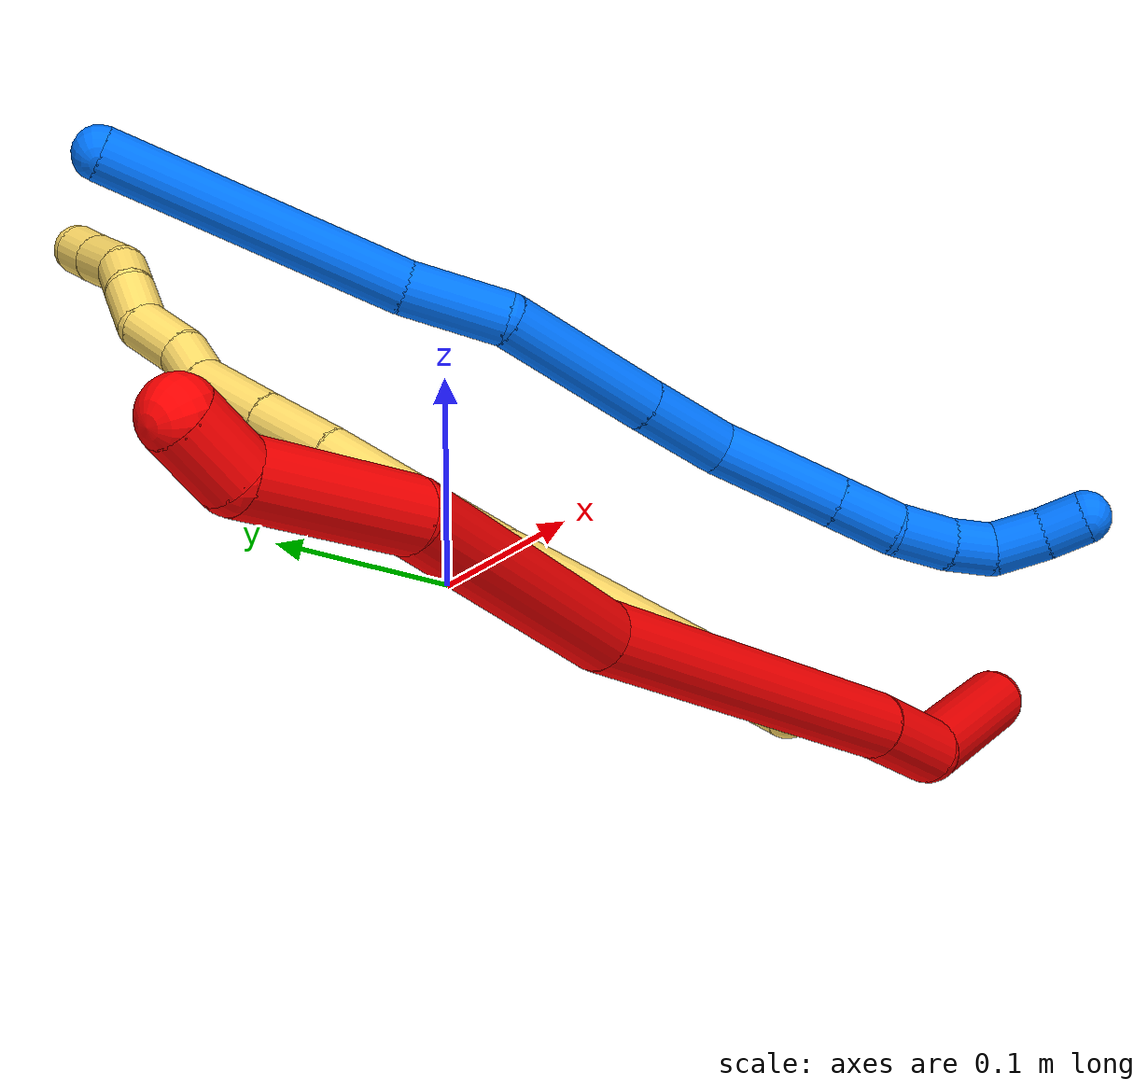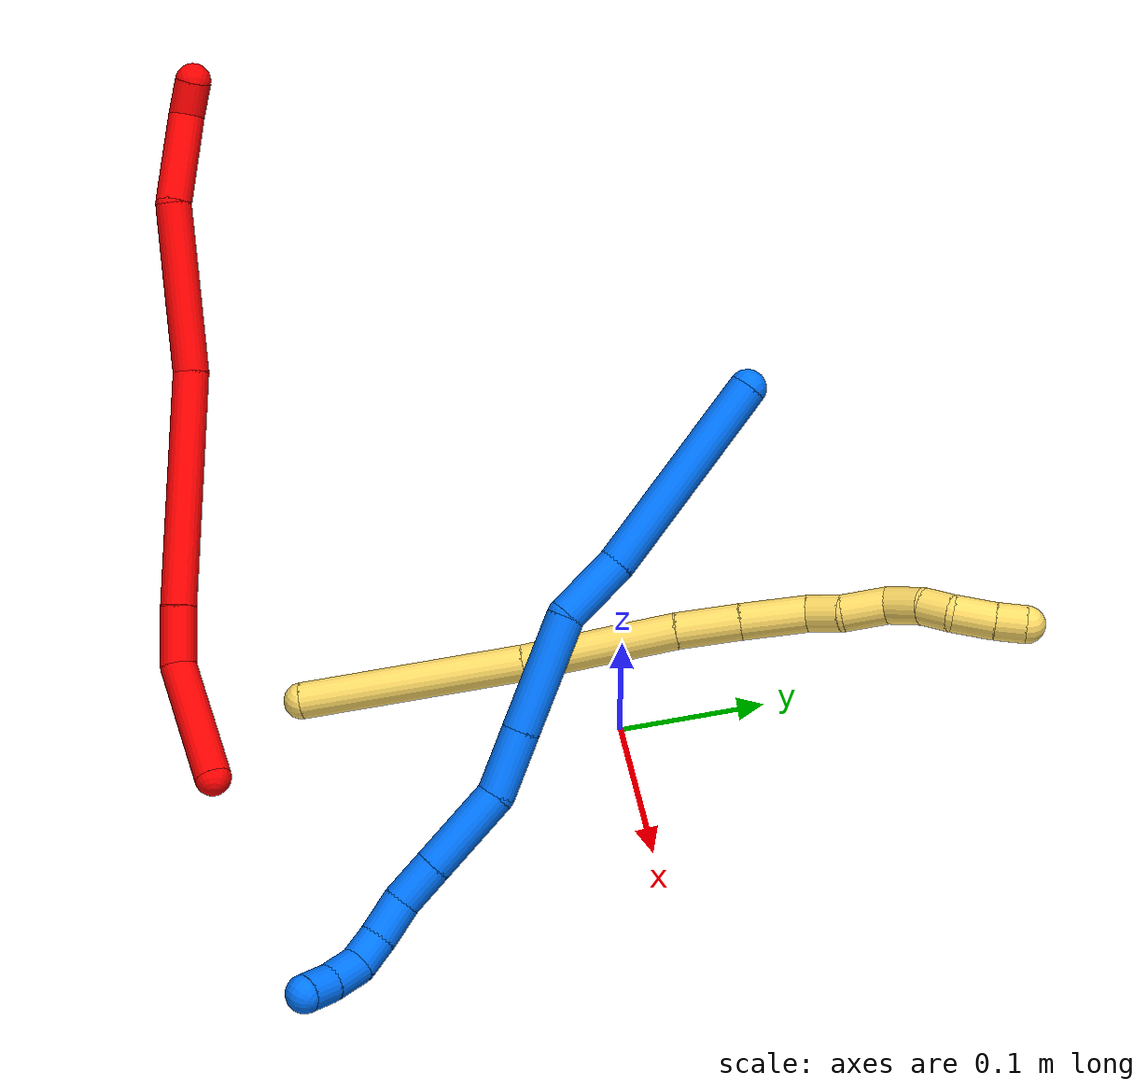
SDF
<sdf version="1.7">
 <world name="default">
  <model name="2">
   <static>0</static>
   <link name="2">
    <collision name="collision-cylinder-e_1_1_4">
     <pose>-0.01053 0.004297 -0.041858 -3.03931 -0.245202 2.35414</pose>
     <geometry><cylinder><radius>0.0125</radius><length>0.086751</length></cylinder></geometry>
     <surface>
      <friction><ode><mu>1.16</mu><mu2>1.16</mu2><slip1>0</slip1><slip2>0</slip2></ode></friction>
      <contact><ode><kp>1e+06</kp><kd>1</kd><max_vel>0</max_vel><min_depth>0.001</min_depth></ode></contact>
     </surface>
    </collision>
    <visual name="visual-cylinder-e_1_1_4">
     <pose>-0.01053 0.004297 -0.041858 -3.03931 -0.245202 2.35414</pose>
     <geometry><cylinder><radius>0.0125</radius><length>0.086751</length></cylinder></geometry>
     <material><ambient>1 0 0 1</ambient></material>
    </visual>
    <collision name="collision-cylinder-e_2_4_5">
     <pose>-0.023011 0.019916 -0.100643 -2.552 -0.095557 0.312376</pose>
     <geometry><cylinder><radius>0.0125</radius><length>0.040917</length></cylinder></geometry>
     <surface>
      <friction><ode><mu>1.16</mu><mu2>1.16</mu2><slip1>0</slip1><slip2>0</slip2></ode></friction>
      <contact><ode><kp>1e+06</kp><kd>1</kd><max_vel>0</max_vel><min_depth>0.001</min_depth></ode></contact>
     </surface>
    </collision>
    <visual name="visual-cylinder-e_2_4_5">
     <pose>-0.023011 0.019916 -0.100643 -2.552 -0.095557 0.312376</pose>
     <geometry><cylinder><radius>0.0125</radius><length>0.040917</length></cylinder></geometry>
     <material><ambient>1 0 0 1</ambient></material>
    </visual>
    <collision name="collision-cylinder-e_3_5_6">
     <pose>-0.027367 0.073064 -0.187672 -2.60366 -0.029442 0.106718</pose>
     <geometry><cylinder><radius>0.0125</radius><length>0.163332</length></cylinder></geometry>
     <surface>
      <friction><ode><mu>1.16</mu><mu2>1.16</mu2><slip1>0</slip1><slip2>0</slip2></ode></friction>
      <contact><ode><kp>1e+06</kp><kd>1</kd><max_vel>0</max_vel><min_depth>0.001</min_depth></ode></contact>
     </surface>
    </collision>
    <visual name="visual-cylinder-e_3_5_6">
     <pose>-0.027367 0.073064 -0.187672 -2.60366 -0.029442 0.106718</pose>
     <geometry><cylinder><radius>0.0125</radius><length>0.163332</length></cylinder></geometry>
     <material><ambient>1 0 0 1</ambient></material>
    </visual>
    <collision name="collision-cylinder-e_4_6_7">
     <pose>-0.041972 0.148427 -0.304797 -2.52204 -0.208171 0.630934</pose>
     <geometry><cylinder><radius>0.0125</radius><length>0.118066</length></cylinder></geometry>
     <surface>
      <friction><ode><mu>1.16</mu><mu2>1.16</mu2><slip1>0</slip1><slip2>0</slip2></ode></friction>
      <contact><ode><kp>1e+06</kp><kd>1</kd><max_vel>0</max_vel><min_depth>0.001</min_depth></ode></contact>
     </surface>
    </collision>
    <visual name="visual-cylinder-e_4_6_7">
     <pose>-0.041972 0.148427 -0.304797 -2.52204 -0.208171 0.630934</pose>
     <geometry><cylinder><radius>0.0125</radius><length>0.118066</length></cylinder></geometry>
     <material><ambient>1 0 0 1</ambient></material>
    </visual>
    <collision name="collision-cylinder-e_5_7_8">
     <pose>-0.051853 0.197434 -0.380897 -2.65269 0.070298 -0.280091</pose>
     <geometry><cylinder><radius>0.0125</radius><length>0.066034</length></cylinder></geometry>
     <surface>
      <friction><ode><mu>1.16</mu><mu2>1.16</mu2><slip1>0</slip1><slip2>0</slip2></ode></friction>
      <contact><ode><kp>1e+06</kp><kd>1</kd><max_vel>0</max_vel><min_depth>0.001</min_depth></ode></contact>
     </surface>
    </collision>
    <visual name="visual-cylinder-e_5_7_8">
     <pose>-0.051853 0.197434 -0.380897 -2.65269 0.070298 -0.280091</pose>
     <geometry><cylinder><radius>0.0125</radius><length>0.066034</length></cylinder></geometry>
     <material><ambient>1 0 0 1</ambient></material>
    </visual>
    <collision name="collision-cylinder-e_6_8_2">
     <pose>-0.049495 0.223406 -0.416659 -2.13765 0.003121 -0.005686</pose>
     <geometry><cylinder><radius>0.0125</radius><length>0.024901</length></cylinder></geometry>
     <surface>
      <friction><ode><mu>1.16</mu><mu2>1.16</mu2><slip1>0</slip1><slip2>0</slip2></ode></friction>
      <contact><ode><kp>1e+06</kp><kd>1</kd><max_vel>0</max_vel><min_depth>0.001</min_depth></ode></contact>
     </surface>
    </collision>
    <visual name="visual-cylinder-e_6_8_2">
     <pose>-0.049495 0.223406 -0.416659 -2.13765 0.003121 -0.005686</pose>
     <geometry><cylinder><radius>0.0125</radius><length>0.024901</length></cylinder></geometry>
     <material><ambient>1 0 0 1</ambient></material>
    </visual>
    <collision name="collision-sphere-2">
     <pose>-0.049456 0.233909 -0.423345 0 -0 0</pose>
     <geometry><sphere><radius>0.0125</radius></sphere></geometry>
     <surface>
      <friction><ode><mu>1.16</mu><mu2>1.16</mu2><slip1>0</slip1><slip2>0</slip2></ode></friction>
      <contact><ode><kp>1e+06</kp><kd>1</kd><max_vel>0</max_vel><min_depth>0.001</min_depth></ode></contact>
     </surface>
    </collision>
    <visual name="visual-sphere-2">
     <pose>-0.049456 0.233909 -0.423345 0 -0 0</pose>
     <geometry><sphere><radius>0.0125</radius></sphere></geometry>
     <material><ambient>1 0 0 1</ambient></material>
    </visual>
    <collision name="collision-sphere-4">
     <pose>-0.021059 0.008593 -0.083717 0 -0 0</pose>
     <geometry><sphere><radius>0.0125</radius></sphere></geometry>
     <surface>
      <friction><ode><mu>1.16</mu><mu2>1.16</mu2><slip1>0</slip1><slip2>0</slip2></ode></friction>
      <contact><ode><kp>1e+06</kp><kd>1</kd><max_vel>0</max_vel><min_depth>0.001</min_depth></ode></contact>
     </surface>
    </collision>
    <visual name="visual-sphere-4">
     <pose>-0.021059 0.008593 -0.083717 0 -0 0</pose>
     <geometry><sphere><radius>0.0125</radius></sphere></geometry>
     <material><ambient>1 0 0 1</ambient></material>
    </visual>
    <collision name="collision-sphere-1">
     <geometry><sphere><radius>0.0125</radius></sphere></geometry>
     <surface>
      <friction><ode><mu>1.16</mu><mu2>1.16</mu2><slip1>0</slip1><slip2>0</slip2></ode></friction>
      <contact><ode><kp>1e+06</kp><kd>1</kd><max_vel>0</max_vel><min_depth>0.001</min_depth></ode></contact>
     </surface>
    </collision>
    <visual name="visual-sphere-1">
     <geometry><sphere><radius>0.0125</radius></sphere></geometry>
     <material><ambient>1 0 0 1</ambient></material>
    </visual>
    <collision name="collision-sphere-8">
     <pose>-0.049534 0.212903 -0.409974 0 -0 0</pose>
     <geometry><sphere><radius>0.0125</radius></sphere></geometry>
     <surface>
      <friction><ode><mu>1.16</mu><mu2>1.16</mu2><slip1>0</slip1><slip2>0</slip2></ode></friction>
      <contact><ode><kp>1e+06</kp><kd>1</kd><max_vel>0</max_vel><min_depth>0.001</min_depth></ode></contact>
     </surface>
    </collision>
    <visual name="visual-sphere-8">
     <pose>-0.049534 0.212903 -0.409974 0 -0 0</pose>
     <geometry><sphere><radius>0.0125</radius></sphere></geometry>
     <material><ambient>1 0 0 1</ambient></material>
    </visual>
    <collision name="collision-sphere-5">
     <pose>-0.024963 0.03124 -0.11757 0 -0 0</pose>
     <geometry><sphere><radius>0.0125</radius></sphere></geometry>
     <surface>
      <friction><ode><mu>1.16</mu><mu2>1.16</mu2><slip1>0</slip1><slip2>0</slip2></ode></friction>
      <contact><ode><kp>1e+06</kp><kd>1</kd><max_vel>0</max_vel><min_depth>0.001</min_depth></ode></contact>
     </surface>
    </collision>
    <visual name="visual-sphere-5">
     <pose>-0.024963 0.03124 -0.11757 0 -0 0</pose>
     <geometry><sphere><radius>0.0125</radius></sphere></geometry>
     <material><ambient>1 0 0 1</ambient></material>
    </visual>
    <collision name="collision-sphere-6">
     <pose>-0.029771 0.114889 -0.257773 0 -0 0</pose>
     <geometry><sphere><radius>0.0125</radius></sphere></geometry>
     <surface>
      <friction><ode><mu>1.16</mu><mu2>1.16</mu2><slip1>0</slip1><slip2>0</slip2></ode></friction>
      <contact><ode><kp>1e+06</kp><kd>1</kd><max_vel>0</max_vel><min_depth>0.001</min_depth></ode></contact>
     </surface>
    </collision>
    <visual name="visual-sphere-6">
     <pose>-0.029771 0.114889 -0.257773 0 -0 0</pose>
     <geometry><sphere><radius>0.0125</radius></sphere></geometry>
     <material><ambient>1 0 0 1</ambient></material>
    </visual>
    <collision name="collision-sphere-7">
     <pose>-0.054172 0.181966 -0.35182 0 -0 0</pose>
     <geometry><sphere><radius>0.0125</radius></sphere></geometry>
     <surface>
      <friction><ode><mu>1.16</mu><mu2>1.16</mu2><slip1>0</slip1><slip2>0</slip2></ode></friction>
      <contact><ode><kp>1e+06</kp><kd>1</kd><max_vel>0</max_vel><min_depth>0.001</min_depth></ode></contact>
     </surface>
    </collision>
    <visual name="visual-sphere-7">
     <pose>-0.054172 0.181966 -0.35182 0 -0 0</pose>
     <geometry><sphere><radius>0.0125</radius></sphere></geometry>
     <material><ambient>1 0 0 1</ambient></material>
    </visual>
    <inertial>
     <pose>-0.031874 0.098492 -0.219831 0 -0 0</pose>
     <mass>0.5</mass>
     <inertia>
      <ixx>0.000626</ixx>
      <ixy>0</ixy>
      <ixz>0</ixz>
      <iyy>-0.000212</iyy>
      <iyz>0</iyz>
      <izz>-0.000274</izz>
     </inertia>
    </inertial>
   </link>
   <pose>-0.009931 -0.276519 0.011857 1.55467 0.360982 1.50251</pose>
  </model>
  <model name="5">
   <static>0</static>
   <link name="5">
    <collision name="collision-cylinder-e_1_1_4">
     <pose>0.027538 0.069721 0.019593 -1.29684 0.363358 -0.276614</pose>
     <geometry><cylinder><radius>0.0125</radius><length>0.154962</length></cylinder></geometry>
     <surface>
      <friction><ode><mu>1.16</mu><mu2>1.16</mu2><slip1>0</slip1><slip2>0</slip2></ode></friction>
      <contact><ode><kp>1e+06</kp><kd>1</kd><max_vel>0</max_vel><min_depth>0.001</min_depth></ode></contact>
     </surface>
    </collision>
    <visual name="visual-cylinder-e_1_1_4">
     <pose>0.027538 0.069721 0.019593 -1.29684 0.363358 -0.276614</pose>
     <geometry><cylinder><radius>0.0125</radius><length>0.154962</length></cylinder></geometry>
     <material><ambient>1 0.858824 0.4 1</ambient></material>
    </visual>
    <collision name="collision-cylinder-e_2_4_5">
     <pose>0.073541 0.186386 0.055084 -1.24427 0.356632 -0.257075</pose>
     <geometry><cylinder><radius>0.0125</radius><length>0.10578</length></cylinder></geometry>
     <surface>
      <friction><ode><mu>1.16</mu><mu2>1.16</mu2><slip1>0</slip1><slip2>0</slip2></ode></friction>
      <contact><ode><kp>1e+06</kp><kd>1</kd><max_vel>0</max_vel><min_depth>0.001</min_depth></ode></contact>
     </surface>
    </collision>
    <visual name="visual-cylinder-e_2_4_5">
     <pose>0.073541 0.186386 0.055084 -1.24427 0.356632 -0.257075</pose>
     <geometry><cylinder><radius>0.0125</radius><length>0.10578</length></cylinder></geometry>
     <material><ambient>1 0.858824 0.4 1</ambient></material>
    </visual>
    <collision name="collision-cylinder-e_3_5_6">
     <pose>0.100199 0.252766 0.076152 -1.3108 0.386822 -0.298893</pose>
     <geometry><cylinder><radius>0.0125</radius><length>0.043436</length></cylinder></geometry>
     <surface>
      <friction><ode><mu>1.16</mu><mu2>1.16</mu2><slip1>0</slip1><slip2>0</slip2></ode></friction>
      <contact><ode><kp>1e+06</kp><kd>1</kd><max_vel>0</max_vel><min_depth>0.001</min_depth></ode></contact>
     </surface>
    </collision>
    <visual name="visual-cylinder-e_3_5_6">
     <pose>0.100199 0.252766 0.076152 -1.3108 0.386822 -0.298893</pose>
     <geometry><cylinder><radius>0.0125</radius><length>0.043436</length></cylinder></geometry>
     <material><ambient>1 0.858824 0.4 1</ambient></material>
    </visual>
    <collision name="collision-cylinder-e_4_6_7">
     <pose>0.117475 0.292426 0.086617 -1.31472 0.409912 -0.318198</pose>
     <geometry><cylinder><radius>0.0125</radius><length>0.045585</length></cylinder></geometry>
     <surface>
      <friction><ode><mu>1.16</mu><mu2>1.16</mu2><slip1>0</slip1><slip2>0</slip2></ode></friction>
      <contact><ode><kp>1e+06</kp><kd>1</kd><max_vel>0</max_vel><min_depth>0.001</min_depth></ode></contact>
     </surface>
    </collision>
    <visual name="visual-cylinder-e_4_6_7">
     <pose>0.117475 0.292426 0.086617 -1.31472 0.409912 -0.318198</pose>
     <geometry><cylinder><radius>0.0125</radius><length>0.045585</length></cylinder></geometry>
     <material><ambient>1 0.858824 0.4 1</ambient></material>
    </visual>
    <collision name="collision-cylinder-e_5_7_8">
     <pose>0.134332 0.320757 0.096317 -1.07308 0.700095 -0.427618</pose>
     <geometry><cylinder><radius>0.0125</radius><length>0.024131</length></cylinder></geometry>
     <surface>
      <friction><ode><mu>1.16</mu><mu2>1.16</mu2><slip1>0</slip1><slip2>0</slip2></ode></friction>
      <contact><ode><kp>1e+06</kp><kd>1</kd><max_vel>0</max_vel><min_depth>0.001</min_depth></ode></contact>
     </surface>
    </collision>
    <visual name="visual-cylinder-e_5_7_8">
     <pose>0.134332 0.320757 0.096317 -1.07308 0.700095 -0.427618</pose>
     <geometry><cylinder><radius>0.0125</radius><length>0.024131</length></cylinder></geometry>
     <material><ambient>1 0.858824 0.4 1</ambient></material>
    </visual>
    <collision name="collision-cylinder-e_6_8_9">
     <pose>0.148244 0.342154 0.105558 -1.22186 0.409479 -0.28881</pose>
     <geometry><cylinder><radius>0.0125</radius><length>0.030831</length></cylinder></geometry>
     <surface>
      <friction><ode><mu>1.16</mu><mu2>1.16</mu2><slip1>0</slip1><slip2>0</slip2></ode></friction>
      <contact><ode><kp>1e+06</kp><kd>1</kd><max_vel>0</max_vel><min_depth>0.001</min_depth></ode></contact>
     </surface>
    </collision>
    <visual name="visual-cylinder-e_6_8_9">
     <pose>0.148244 0.342154 0.105558 -1.22186 0.409479 -0.28881</pose>
     <geometry><cylinder><radius>0.0125</radius><length>0.030831</length></cylinder></geometry>
     <material><ambient>1 0.858824 0.4 1</ambient></material>
    </visual>
    <collision name="collision-cylinder-e_7_9_10">
     <pose>0.163576 0.362538 0.115868 -0.913509 0.798202 -0.408706</pose>
     <geometry><cylinder><radius>0.0125</radius><length>0.02568</length></cylinder></geometry>
     <surface>
      <friction><ode><mu>1.16</mu><mu2>1.16</mu2><slip1>0</slip1><slip2>0</slip2></ode></friction>
      <contact><ode><kp>1e+06</kp><kd>1</kd><max_vel>0</max_vel><min_depth>0.001</min_depth></ode></contact>
     </surface>
    </collision>
    <visual name="visual-cylinder-e_7_9_10">
     <pose>0.163576 0.362538 0.115868 -0.913509 0.798202 -0.408706</pose>
     <geometry><cylinder><radius>0.0125</radius><length>0.02568</length></cylinder></geometry>
     <material><ambient>1 0.858824 0.4 1</ambient></material>
    </visual>
    <collision name="collision-cylinder-e_8_10_11">
     <pose>0.181156 0.37567 0.123643 -1.20696 0.91435 -0.653806</pose>
     <geometry><cylinder><radius>0.0125</radius><length>0.021169</length></cylinder></geometry>
     <surface>
      <friction><ode><mu>1.16</mu><mu2>1.16</mu2><slip1>0</slip1><slip2>0</slip2></ode></friction>
      <contact><ode><kp>1e+06</kp><kd>1</kd><max_vel>0</max_vel><min_depth>0.001</min_depth></ode></contact>
     </surface>
    </collision>
    <visual name="visual-cylinder-e_8_10_11">
     <pose>0.181156 0.37567 0.123643 -1.20696 0.91435 -0.653806</pose>
     <geometry><cylinder><radius>0.0125</radius><length>0.021169</length></cylinder></geometry>
     <material><ambient>1 0.858824 0.4 1</ambient></material>
    </visual>
    <collision name="collision-cylinder-e_9_11_12">
     <pose>0.197607 0.393129 0.125863 -1.57767 0.61491 -0.618885</pose>
     <geometry><cylinder><radius>0.0125</radius><length>0.027967</length></cylinder></geometry>
     <surface>
      <friction><ode><mu>1.16</mu><mu2>1.16</mu2><slip1>0</slip1><slip2>0</slip2></ode></friction>
      <contact><ode><kp>1e+06</kp><kd>1</kd><max_vel>0</max_vel><min_depth>0.001</min_depth></ode></contact>
     </surface>
    </collision>
    <visual name="visual-cylinder-e_9_11_12">
     <pose>0.197607 0.393129 0.125863 -1.57767 0.61491 -0.618885</pose>
     <geometry><cylinder><radius>0.0125</radius><length>0.027967</length></cylinder></geometry>
     <material><ambient>1 0.858824 0.4 1</ambient></material>
    </visual>
    <collision name="collision-cylinder-e_10_12_2">
     <pose>0.211236 0.41311 0.126444 -1.49389 0.574867 -0.534345</pose>
     <geometry><cylinder><radius>0.0125</radius><length>0.020458</length></cylinder></geometry>
     <surface>
      <friction><ode><mu>1.16</mu><mu2>1.16</mu2><slip1>0</slip1><slip2>0</slip2></ode></friction>
      <contact><ode><kp>1e+06</kp><kd>1</kd><max_vel>0</max_vel><min_depth>0.001</min_depth></ode></contact>
     </surface>
    </collision>
    <visual name="visual-cylinder-e_10_12_2">
     <pose>0.211236 0.41311 0.126444 -1.49389 0.574867 -0.534345</pose>
     <geometry><cylinder><radius>0.0125</radius><length>0.020458</length></cylinder></geometry>
     <material><ambient>1 0.858824 0.4 1</ambient></material>
    </visual>
    <collision name="collision-sphere-2">
     <pose>0.216798 0.42167 0.127104 0 -0 0</pose>
     <geometry><sphere><radius>0.0125</radius></sphere></geometry>
     <surface>
      <friction><ode><mu>1.16</mu><mu2>1.16</mu2><slip1>0</slip1><slip2>0</slip2></ode></friction>
      <contact><ode><kp>1e+06</kp><kd>1</kd><max_vel>0</max_vel><min_depth>0.001</min_depth></ode></contact>
     </surface>
    </collision>
    <visual name="visual-sphere-2">
     <pose>0.216798 0.42167 0.127104 0 -0 0</pose>
     <geometry><sphere><radius>0.0125</radius></sphere></geometry>
     <material><ambient>1 0.858824 0.4 1</ambient></material>
    </visual>
    <collision name="collision-sphere-12">
     <pose>0.205674 0.404551 0.125785 0 -0 0</pose>
     <geometry><sphere><radius>0.0125</radius></sphere></geometry>
     <surface>
      <friction><ode><mu>1.16</mu><mu2>1.16</mu2><slip1>0</slip1><slip2>0</slip2></ode></friction>
      <contact><ode><kp>1e+06</kp><kd>1</kd><max_vel>0</max_vel><min_depth>0.001</min_depth></ode></contact>
     </surface>
    </collision>
    <visual name="visual-sphere-12">
     <pose>0.205674 0.404551 0.125785 0 -0 0</pose>
     <geometry><sphere><radius>0.0125</radius></sphere></geometry>
     <material><ambient>1 0.858824 0.4 1</ambient></material>
    </visual>
    <collision name="collision-sphere-11">
     <pose>0.18954 0.381707 0.125942 0 -0 0</pose>
     <geometry><sphere><radius>0.0125</radius></sphere></geometry>
     <surface>
      <friction><ode><mu>1.16</mu><mu2>1.16</mu2><slip1>0</slip1><slip2>0</slip2></ode></friction>
      <contact><ode><kp>1e+06</kp><kd>1</kd><max_vel>0</max_vel><min_depth>0.001</min_depth></ode></contact>
     </surface>
    </collision>
    <visual name="visual-sphere-11">
     <pose>0.18954 0.381707 0.125942 0 -0 0</pose>
     <geometry><sphere><radius>0.0125</radius></sphere></geometry>
     <material><ambient>1 0.858824 0.4 1</ambient></material>
    </visual>
    <collision name="collision-sphere-10">
     <pose>0.172771 0.369633 0.121344 0 -0 0</pose>
     <geometry><sphere><radius>0.0125</radius></sphere></geometry>
     <surface>
      <friction><ode><mu>1.16</mu><mu2>1.16</mu2><slip1>0</slip1><slip2>0</slip2></ode></friction>
      <contact><ode><kp>1e+06</kp><kd>1</kd><max_vel>0</max_vel><min_depth>0.001</min_depth></ode></contact>
     </surface>
    </collision>
    <visual name="visual-sphere-10">
     <pose>0.172771 0.369633 0.121344 0 -0 0</pose>
     <geometry><sphere><radius>0.0125</radius></sphere></geometry>
     <material><ambient>1 0.858824 0.4 1</ambient></material>
    </visual>
    <collision name="collision-sphere-9">
     <pose>0.154381 0.355443 0.110392 0 -0 0</pose>
     <geometry><sphere><radius>0.0125</radius></sphere></geometry>
     <surface>
      <friction><ode><mu>1.16</mu><mu2>1.16</mu2><slip1>0</slip1><slip2>0</slip2></ode></friction>
      <contact><ode><kp>1e+06</kp><kd>1</kd><max_vel>0</max_vel><min_depth>0.001</min_depth></ode></contact>
     </surface>
    </collision>
    <visual name="visual-sphere-9">
     <pose>0.154381 0.355443 0.110392 0 -0 0</pose>
     <geometry><sphere><radius>0.0125</radius></sphere></geometry>
     <material><ambient>1 0.858824 0.4 1</ambient></material>
    </visual>
    <collision name="collision-sphere-4">
     <pose>0.055076 0.139443 0.039187 0 -0 0</pose>
     <geometry><sphere><radius>0.0125</radius></sphere></geometry>
     <surface>
      <friction><ode><mu>1.16</mu><mu2>1.16</mu2><slip1>0</slip1><slip2>0</slip2></ode></friction>
      <contact><ode><kp>1e+06</kp><kd>1</kd><max_vel>0</max_vel><min_depth>0.001</min_depth></ode></contact>
     </surface>
    </collision>
    <visual name="visual-sphere-4">
     <pose>0.055076 0.139443 0.039187 0 -0 0</pose>
     <geometry><sphere><radius>0.0125</radius></sphere></geometry>
     <material><ambient>1 0.858824 0.4 1</ambient></material>
    </visual>
    <collision name="collision-sphere-1">
     <geometry><sphere><radius>0.0125</radius></sphere></geometry>
     <surface>
      <friction><ode><mu>1.16</mu><mu2>1.16</mu2><slip1>0</slip1><slip2>0</slip2></ode></friction>
      <contact><ode><kp>1e+06</kp><kd>1</kd><max_vel>0</max_vel><min_depth>0.001</min_depth></ode></contact>
     </surface>
    </collision>
    <visual name="visual-sphere-1">
     <geometry><sphere><radius>0.0125</radius></sphere></geometry>
     <material><ambient>1 0.858824 0.4 1</ambient></material>
    </visual>
    <collision name="collision-sphere-8">
     <pose>0.142106 0.328865 0.100723 0 -0 0</pose>
     <geometry><sphere><radius>0.0125</radius></sphere></geometry>
     <surface>
      <friction><ode><mu>1.16</mu><mu2>1.16</mu2><slip1>0</slip1><slip2>0</slip2></ode></friction>
      <contact><ode><kp>1e+06</kp><kd>1</kd><max_vel>0</max_vel><min_depth>0.001</min_depth></ode></contact>
     </surface>
    </collision>
    <visual name="visual-sphere-8">
     <pose>0.142106 0.328865 0.100723 0 -0 0</pose>
     <geometry><sphere><radius>0.0125</radius></sphere></geometry>
     <material><ambient>1 0.858824 0.4 1</ambient></material>
    </visual>
    <collision name="collision-sphere-5">
     <pose>0.092006 0.233329 0.070981 0 -0 0</pose>
     <geometry><sphere><radius>0.0125</radius></sphere></geometry>
     <surface>
      <friction><ode><mu>1.16</mu><mu2>1.16</mu2><slip1>0</slip1><slip2>0</slip2></ode></friction>
      <contact><ode><kp>1e+06</kp><kd>1</kd><max_vel>0</max_vel><min_depth>0.001</min_depth></ode></contact>
     </surface>
    </collision>
    <visual name="visual-sphere-5">
     <pose>0.092006 0.233329 0.070981 0 -0 0</pose>
     <geometry><sphere><radius>0.0125</radius></sphere></geometry>
     <material><ambient>1 0.858824 0.4 1</ambient></material>
    </visual>
    <collision name="collision-sphere-6">
     <pose>0.108392 0.272203 0.081322 0 -0 0</pose>
     <geometry><sphere><radius>0.0125</radius></sphere></geometry>
     <surface>
      <friction><ode><mu>1.16</mu><mu2>1.16</mu2><slip1>0</slip1><slip2>0</slip2></ode></friction>
      <contact><ode><kp>1e+06</kp><kd>1</kd><max_vel>0</max_vel><min_depth>0.001</min_depth></ode></contact>
     </surface>
    </collision>
    <visual name="visual-sphere-6">
     <pose>0.108392 0.272203 0.081322 0 -0 0</pose>
     <geometry><sphere><radius>0.0125</radius></sphere></geometry>
     <material><ambient>1 0.858824 0.4 1</ambient></material>
    </visual>
    <collision name="collision-sphere-7">
     <pose>0.126559 0.312649 0.091912 0 -0 0</pose>
     <geometry><sphere><radius>0.0125</radius></sphere></geometry>
     <surface>
      <friction><ode><mu>1.16</mu><mu2>1.16</mu2><slip1>0</slip1><slip2>0</slip2></ode></friction>
      <contact><ode><kp>1e+06</kp><kd>1</kd><max_vel>0</max_vel><min_depth>0.001</min_depth></ode></contact>
     </surface>
    </collision>
    <visual name="visual-sphere-7">
     <pose>0.126559 0.312649 0.091912 0 -0 0</pose>
     <geometry><sphere><radius>0.0125</radius></sphere></geometry>
     <material><ambient>1 0.858824 0.4 1</ambient></material>
    </visual>
    <inertial>
     <pose>0.094899 0.219655 0.066795 0 -0 0</pose>
     <mass>0.5</mass>
     <inertia>
      <ixx>0.000305</ixx>
      <ixy>0</ixy>
      <ixz>0</ixz>
      <iyy>8.4e-05</iyy>
      <iyz>0</iyz>
      <izz>-0.000556</izz>
     </inertia>
    </inertial>
   </link>
   <pose>-0.059663 -0.20923 0.011491 -0.123703 -0.125708 0.218312</pose>
  </model>
  <model name="14">
   <static>0</static>
   <link name="14">
    <collision name="collision-cylinder-e_1_1_4">
     <pose>0.042865 -0.056901 -0.006378 1.68242 0.642635 0.712706</pose>
     <geometry><cylinder><radius>0.0125</radius><length>0.14305</length></cylinder></geometry>
     <surface>
      <friction><ode><mu>1.16</mu><mu2>1.16</mu2><slip1>0</slip1><slip2>0</slip2></ode></friction>
      <contact><ode><kp>1e+06</kp><kd>1</kd><max_vel>0</max_vel><min_depth>0.001</min_depth></ode></contact>
     </surface>
    </collision>
    <visual name="visual-cylinder-e_1_1_4">
     <pose>0.042865 -0.056901 -0.006378 1.68242 0.642635 0.712706</pose>
     <geometry><cylinder><radius>0.0125</radius><length>0.14305</length></cylinder></geometry>
     <material><ambient>0 0.462745 1 1</ambient></material>
    </visual>
    <collision name="collision-cylinder-e_2_4_5">
     <pose>0.096811 -0.134372 -0.016135 1.73361 0.488556 0.57104</pose>
     <geometry><cylinder><radius>0.0125</radius><length>0.047216</length></cylinder></geometry>
     <surface>
      <friction><ode><mu>1.16</mu><mu2>1.16</mu2><slip1>0</slip1><slip2>0</slip2></ode></friction>
      <contact><ode><kp>1e+06</kp><kd>1</kd><max_vel>0</max_vel><min_depth>0.001</min_depth></ode></contact>
     </surface>
    </collision>
    <visual name="visual-cylinder-e_2_4_5">
     <pose>0.096811 -0.134372 -0.016135 1.73361 0.488556 0.57104</pose>
     <geometry><cylinder><radius>0.0125</radius><length>0.047216</length></cylinder></geometry>
     <material><ambient>0 0.462745 1 1</ambient></material>
    </visual>
    <collision name="collision-cylinder-e_3_5_6">
     <pose>0.137974 -0.180684 -0.016024 1.43606 0.858497 0.760758</pose>
     <geometry><cylinder><radius>0.0125</radius><length>0.079492</length></cylinder></geometry>
     <surface>
      <friction><ode><mu>1.16</mu><mu2>1.16</mu2><slip1>0</slip1><slip2>0</slip2></ode></friction>
      <contact><ode><kp>1e+06</kp><kd>1</kd><max_vel>0</max_vel><min_depth>0.001</min_depth></ode></contact>
     </surface>
    </collision>
    <visual name="visual-cylinder-e_3_5_6">
     <pose>0.137974 -0.180684 -0.016024 1.43606 0.858497 0.760758</pose>
     <geometry><cylinder><radius>0.0125</radius><length>0.079492</length></cylinder></geometry>
     <material><ambient>0 0.462745 1 1</ambient></material>
    </visual>
    <collision name="collision-cylinder-e_4_6_7">
     <pose>0.184608 -0.220966 -0.010305 1.41862 0.844253 0.735887</pose>
     <geometry><cylinder><radius>0.0125</radius><length>0.044289</length></cylinder></geometry>
     <surface>
      <friction><ode><mu>1.16</mu><mu2>1.16</mu2><slip1>0</slip1><slip2>0</slip2></ode></friction>
      <contact><ode><kp>1e+06</kp><kd>1</kd><max_vel>0</max_vel><min_depth>0.001</min_depth></ode></contact>
     </surface>
    </collision>
    <visual name="visual-cylinder-e_4_6_7">
     <pose>0.184608 -0.220966 -0.010305 1.41862 0.844253 0.735887</pose>
     <geometry><cylinder><radius>0.0125</radius><length>0.044289</length></cylinder></geometry>
     <material><ambient>0 0.462745 1 1</ambient></material>
    </visual>
    <collision name="collision-cylinder-e_5_7_8">
     <pose>0.218434 -0.259514 -0.013439 1.79061 0.612174 0.751368</pose>
     <geometry><cylinder><radius>0.0125</radius><length>0.060116</length></cylinder></geometry>
     <surface>
      <friction><ode><mu>1.16</mu><mu2>1.16</mu2><slip1>0</slip1><slip2>0</slip2></ode></friction>
      <contact><ode><kp>1e+06</kp><kd>1</kd><max_vel>0</max_vel><min_depth>0.001</min_depth></ode></contact>
     </surface>
    </collision>
    <visual name="visual-cylinder-e_5_7_8">
     <pose>0.218434 -0.259514 -0.013439 1.79061 0.612174 0.751368</pose>
     <geometry><cylinder><radius>0.0125</radius><length>0.060116</length></cylinder></geometry>
     <material><ambient>0 0.462745 1 1</ambient></material>
    </visual>
    <collision name="collision-cylinder-e_6_8_9">
     <pose>0.244538 -0.295714 -0.021538 1.79145 0.615246 0.755602</pose>
     <geometry><cylinder><radius>0.0125</radius><length>0.030603</length></cylinder></geometry>
     <surface>
      <friction><ode><mu>1.16</mu><mu2>1.16</mu2><slip1>0</slip1><slip2>0</slip2></ode></friction>
      <contact><ode><kp>1e+06</kp><kd>1</kd><max_vel>0</max_vel><min_depth>0.001</min_depth></ode></contact>
     </surface>
    </collision>
    <visual name="visual-cylinder-e_6_8_9">
     <pose>0.244538 -0.295714 -0.021538 1.79145 0.615246 0.755602</pose>
     <geometry><cylinder><radius>0.0125</radius><length>0.030603</length></cylinder></geometry>
     <material><ambient>0 0.462745 1 1</ambient></material>
    </visual>
    <collision name="collision-cylinder-e_7_9_10">
     <pose>0.260779 -0.319548 -0.023774 1.52796 0.566405 0.543826</pose>
     <geometry><cylinder><radius>0.0125</radius><length>0.027618</length></cylinder></geometry>
     <surface>
      <friction><ode><mu>1.16</mu><mu2>1.16</mu2><slip1>0</slip1><slip2>0</slip2></ode></friction>
      <contact><ode><kp>1e+06</kp><kd>1</kd><max_vel>0</max_vel><min_depth>0.001</min_depth></ode></contact>
     </surface>
    </collision>
    <visual name="visual-cylinder-e_7_9_10">
     <pose>0.260779 -0.319548 -0.023774 1.52796 0.566405 0.543826</pose>
     <geometry><cylinder><radius>0.0125</radius><length>0.027618</length></cylinder></geometry>
     <material><ambient>0 0.462745 1 1</ambient></material>
    </visual>
    <collision name="collision-cylinder-e_8_10_11">
     <pose>0.27255 -0.341219 -0.022606 1.50424 0.409361 0.383649</pose>
     <geometry><cylinder><radius>0.0125</radius><length>0.021912</length></cylinder></geometry>
     <surface>
      <friction><ode><mu>1.16</mu><mu2>1.16</mu2><slip1>0</slip1><slip2>0</slip2></ode></friction>
      <contact><ode><kp>1e+06</kp><kd>1</kd><max_vel>0</max_vel><min_depth>0.001</min_depth></ode></contact>
     </surface>
    </collision>
    <visual name="visual-cylinder-e_8_10_11">
     <pose>0.27255 -0.341219 -0.022606 1.50424 0.409361 0.383649</pose>
     <geometry><cylinder><radius>0.0125</radius><length>0.021912</length></cylinder></geometry>
     <material><ambient>0 0.462745 1 1</ambient></material>
    </visual>
    <collision name="collision-cylinder-e_9_11_12">
     <pose>0.275628 -0.363758 -0.021632 1.54638 -0.10215 -0.099691</pose>
     <geometry><cylinder><radius>0.0125</radius><length>0.02516</length></cylinder></geometry>
     <surface>
      <friction><ode><mu>1.16</mu><mu2>1.16</mu2><slip1>0</slip1><slip2>0</slip2></ode></friction>
      <contact><ode><kp>1e+06</kp><kd>1</kd><max_vel>0</max_vel><min_depth>0.001</min_depth></ode></contact>
     </surface>
    </collision>
    <visual name="visual-cylinder-e_9_11_12">
     <pose>0.275628 -0.363758 -0.021632 1.54638 -0.10215 -0.099691</pose>
     <geometry><cylinder><radius>0.0125</radius><length>0.02516</length></cylinder></geometry>
     <material><ambient>0 0.462745 1 1</ambient></material>
    </visual>
    <collision name="collision-cylinder-e_10_12_2">
     <pose>0.271812 -0.386219 -0.021655 1.6038 -0.249106 -0.257375</pose>
     <geometry><cylinder><radius>0.0125</radius><length>0.020544</length></cylinder></geometry>
     <surface>
      <friction><ode><mu>1.16</mu><mu2>1.16</mu2><slip1>0</slip1><slip2>0</slip2></ode></friction>
      <contact><ode><kp>1e+06</kp><kd>1</kd><max_vel>0</max_vel><min_depth>0.001</min_depth></ode></contact>
     </surface>
    </collision>
    <visual name="visual-cylinder-e_10_12_2">
     <pose>0.271812 -0.386219 -0.021655 1.6038 -0.249106 -0.257375</pose>
     <geometry><cylinder><radius>0.0125</radius><length>0.020544</length></cylinder></geometry>
     <material><ambient>0 0.462745 1 1</ambient></material>
    </visual>
    <collision name="collision-sphere-2">
     <pose>0.26928 -0.396168 -0.021984 0 -0 0</pose>
     <geometry><sphere><radius>0.0125</radius></sphere></geometry>
     <surface>
      <friction><ode><mu>1.16</mu><mu2>1.16</mu2><slip1>0</slip1><slip2>0</slip2></ode></friction>
      <contact><ode><kp>1e+06</kp><kd>1</kd><max_vel>0</max_vel><min_depth>0.001</min_depth></ode></contact>
     </surface>
    </collision>
    <visual name="visual-sphere-2">
     <pose>0.26928 -0.396168 -0.021984 0 -0 0</pose>
     <geometry><sphere><radius>0.0125</radius></sphere></geometry>
     <material><ambient>0 0.462745 1 1</ambient></material>
    </visual>
    <collision name="collision-sphere-12">
     <pose>0.274345 -0.376269 -0.021327 0 -0 0</pose>
     <geometry><sphere><radius>0.0125</radius></sphere></geometry>
     <surface>
      <friction><ode><mu>1.16</mu><mu2>1.16</mu2><slip1>0</slip1><slip2>0</slip2></ode></friction>
      <contact><ode><kp>1e+06</kp><kd>1</kd><max_vel>0</max_vel><min_depth>0.001</min_depth></ode></contact>
     </surface>
    </collision>
    <visual name="visual-sphere-12">
     <pose>0.274345 -0.376269 -0.021327 0 -0 0</pose>
     <geometry><sphere><radius>0.0125</radius></sphere></geometry>
     <material><ambient>0 0.462745 1 1</ambient></material>
    </visual>
    <collision name="collision-sphere-11">
     <pose>0.276911 -0.351248 -0.021938 0 -0 0</pose>
     <geometry><sphere><radius>0.0125</radius></sphere></geometry>
     <surface>
      <friction><ode><mu>1.16</mu><mu2>1.16</mu2><slip1>0</slip1><slip2>0</slip2></ode></friction>
      <contact><ode><kp>1e+06</kp><kd>1</kd><max_vel>0</max_vel><min_depth>0.001</min_depth></ode></contact>
     </surface>
    </collision>
    <visual name="visual-sphere-11">
     <pose>0.276911 -0.351248 -0.021938 0 -0 0</pose>
     <geometry><sphere><radius>0.0125</radius></sphere></geometry>
     <material><ambient>0 0.462745 1 1</ambient></material>
    </visual>
    <collision name="collision-sphere-10">
     <pose>0.268189 -0.33119 -0.023275 0 -0 0</pose>
     <geometry><sphere><radius>0.0125</radius></sphere></geometry>
     <surface>
      <friction><ode><mu>1.16</mu><mu2>1.16</mu2><slip1>0</slip1><slip2>0</slip2></ode></friction>
      <contact><ode><kp>1e+06</kp><kd>1</kd><max_vel>0</max_vel><min_depth>0.001</min_depth></ode></contact>
     </surface>
    </collision>
    <visual name="visual-sphere-10">
     <pose>0.268189 -0.33119 -0.023275 0 -0 0</pose>
     <geometry><sphere><radius>0.0125</radius></sphere></geometry>
     <material><ambient>0 0.462745 1 1</ambient></material>
    </visual>
    <collision name="collision-sphere-9">
     <pose>0.253369 -0.307907 -0.024273 0 -0 0</pose>
     <geometry><sphere><radius>0.0125</radius></sphere></geometry>
     <surface>
      <friction><ode><mu>1.16</mu><mu2>1.16</mu2><slip1>0</slip1><slip2>0</slip2></ode></friction>
      <contact><ode><kp>1e+06</kp><kd>1</kd><max_vel>0</max_vel><min_depth>0.001</min_depth></ode></contact>
     </surface>
    </collision>
    <visual name="visual-sphere-9">
     <pose>0.253369 -0.307907 -0.024273 0 -0 0</pose>
     <geometry><sphere><radius>0.0125</radius></sphere></geometry>
     <material><ambient>0 0.462745 1 1</ambient></material>
    </visual>
    <collision name="collision-sphere-4">
     <pose>0.085731 -0.113801 -0.012756 0 -0 0</pose>
     <geometry><sphere><radius>0.0125</radius></sphere></geometry>
     <surface>
      <friction><ode><mu>1.16</mu><mu2>1.16</mu2><slip1>0</slip1><slip2>0</slip2></ode></friction>
      <contact><ode><kp>1e+06</kp><kd>1</kd><max_vel>0</max_vel><min_depth>0.001</min_depth></ode></contact>
     </surface>
    </collision>
    <visual name="visual-sphere-4">
     <pose>0.085731 -0.113801 -0.012756 0 -0 0</pose>
     <geometry><sphere><radius>0.0125</radius></sphere></geometry>
     <material><ambient>0 0.462745 1 1</ambient></material>
    </visual>
    <collision name="collision-sphere-1">
     <geometry><sphere><radius>0.0125</radius></sphere></geometry>
     <surface>
      <friction><ode><mu>1.16</mu><mu2>1.16</mu2><slip1>0</slip1><slip2>0</slip2></ode></friction>
      <contact><ode><kp>1e+06</kp><kd>1</kd><max_vel>0</max_vel><min_depth>0.001</min_depth></ode></contact>
     </surface>
    </collision>
    <visual name="visual-sphere-1">
     <geometry><sphere><radius>0.0125</radius></sphere></geometry>
     <material><ambient>0 0.462745 1 1</ambient></material>
    </visual>
    <collision name="collision-sphere-8">
     <pose>0.235706 -0.283521 -0.018803 0 -0 0</pose>
     <geometry><sphere><radius>0.0125</radius></sphere></geometry>
     <surface>
      <friction><ode><mu>1.16</mu><mu2>1.16</mu2><slip1>0</slip1><slip2>0</slip2></ode></friction>
      <contact><ode><kp>1e+06</kp><kd>1</kd><max_vel>0</max_vel><min_depth>0.001</min_depth></ode></contact>
     </surface>
    </collision>
    <visual name="visual-sphere-8">
     <pose>0.235706 -0.283521 -0.018803 0 -0 0</pose>
     <geometry><sphere><radius>0.0125</radius></sphere></geometry>
     <material><ambient>0 0.462745 1 1</ambient></material>
    </visual>
    <collision name="collision-sphere-5">
     <pose>0.107891 -0.154942 -0.019514 0 -0 0</pose>
     <geometry><sphere><radius>0.0125</radius></sphere></geometry>
     <surface>
      <friction><ode><mu>1.16</mu><mu2>1.16</mu2><slip1>0</slip1><slip2>0</slip2></ode></friction>
      <contact><ode><kp>1e+06</kp><kd>1</kd><max_vel>0</max_vel><min_depth>0.001</min_depth></ode></contact>
     </surface>
    </collision>
    <visual name="visual-sphere-5">
     <pose>0.107891 -0.154942 -0.019514 0 -0 0</pose>
     <geometry><sphere><radius>0.0125</radius></sphere></geometry>
     <material><ambient>0 0.462745 1 1</ambient></material>
    </visual>
    <collision name="collision-sphere-6">
     <pose>0.168056 -0.206425 -0.012535 0 -0 0</pose>
     <geometry><sphere><radius>0.0125</radius></sphere></geometry>
     <surface>
      <friction><ode><mu>1.16</mu><mu2>1.16</mu2><slip1>0</slip1><slip2>0</slip2></ode></friction>
      <contact><ode><kp>1e+06</kp><kd>1</kd><max_vel>0</max_vel><min_depth>0.001</min_depth></ode></contact>
     </surface>
    </collision>
    <visual name="visual-sphere-6">
     <pose>0.168056 -0.206425 -0.012535 0 -0 0</pose>
     <geometry><sphere><radius>0.0125</radius></sphere></geometry>
     <material><ambient>0 0.462745 1 1</ambient></material>
    </visual>
    <collision name="collision-sphere-7">
     <pose>0.201161 -0.235506 -0.008075 0 -0 0</pose>
     <geometry><sphere><radius>0.0125</radius></sphere></geometry>
     <surface>
      <friction><ode><mu>1.16</mu><mu2>1.16</mu2><slip1>0</slip1><slip2>0</slip2></ode></friction>
      <contact><ode><kp>1e+06</kp><kd>1</kd><max_vel>0</max_vel><min_depth>0.001</min_depth></ode></contact>
     </surface>
    </collision>
    <visual name="visual-sphere-7">
     <pose>0.201161 -0.235506 -0.008075 0 -0 0</pose>
     <geometry><sphere><radius>0.0125</radius></sphere></geometry>
     <material><ambient>0 0.462745 1 1</ambient></material>
    </visual>
    <inertial>
     <pose>0.15231 -0.193346 -0.014025 0 -0 0</pose>
     <mass>0.5</mass>
     <inertia>
      <ixx>0.000402</ixx>
      <ixy>0</ixy>
      <ixz>0</ixz>
      <iyy>0.000261</iyy>
      <iyz>0</iyz>
      <izz>5.7e-05</izz>
     </inertia>
    </inertial>
   </link>
   <pose>-0.105093 0.104768 0.211393 -0.781803 1.28369 -0.159503</pose>
  </model>
 </world>
</sdf>
